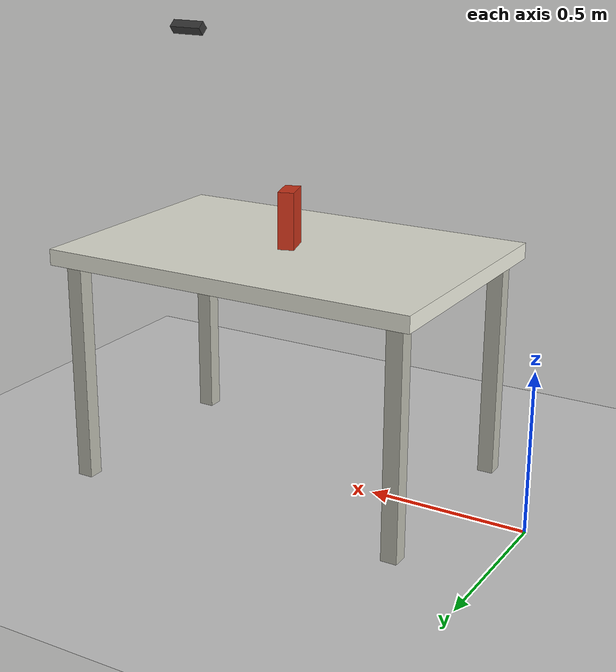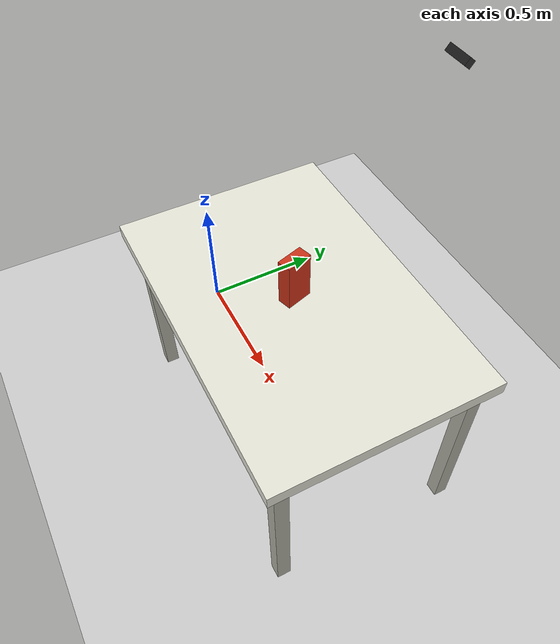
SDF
<?xml version="1.0" ?>
<sdf version="1.9">
  <world name="table_scene">

    <!--
      Physics settings.
      We use a 1ms timestep which gives stable simulation for rigid body contact.
      Real time factor 1.0 means simulation runs at the same speed as wall clock time.
    -->
    <physics name="default_physics" type="ode">
      <max_step_size>0.001</max_step_size>
      <real_time_factor>1.0</real_time_factor>
    </physics>

    <scene>
      <ambient>0.4 0.4 0.4 1</ambient>
      <background>0.7 0.7 0.7 1</background>
      <shadows>true</shadows>
    </scene>

    <!-- Plugins that Gazebo Harmonic needs to simulate sensors and physics -->
    <plugin filename="gz-sim-physics-system"
            name="gz::sim::systems::Physics"/>
    <plugin filename="gz-sim-sensors-system"
            name="gz::sim::systems::Sensors">
      <render_engine>ogre2</render_engine>
    </plugin>
    <plugin filename="gz-sim-contact-system"
            name="gz::sim::systems::Contact"/>
    <plugin filename="gz-sim-scene-broadcaster-system"
            name="gz::sim::systems::SceneBroadcaster"/>
    <plugin filename="gz-sim-user-commands-system"
            name="gz::sim::systems::UserCommands"/>

    <!-- Lighting: a directional sun light so the camera gets realistic color images -->
    <light type="directional" name="sun">
      <cast_shadows>true</cast_shadows>
      <pose>0 0 10 0 0 0</pose>
      <diffuse>0.8 0.8 0.8 1</diffuse>
      <specular>0.2 0.2 0.2 1</specular>
      <direction>-0.5 0.1 -0.9</direction>
    </light>

    <!-- Ground plane so objects don't fall forever -->
    <model name="ground_plane">
      <static>true</static>
      <link name="link">
        <collision name="collision">
          <geometry><plane><normal>0 0 1</normal></plane></geometry>
        </collision>
        <visual name="visual">
          <geometry><plane><normal>0 0 1</normal><size>100 100</size></plane></geometry>
          <material>
            <ambient>0.8 0.8 0.8 1</ambient>
            <diffuse>0.8 0.8 0.8 1</diffuse>
          </material>
        </visual>
      </link>
    </model>

    <model name="table">
      <static>true</static>
      <pose>0.8 0 0 0 0 0</pose>
      <link name="link">
        <!-- Tabletop slab: 5cm thick, top surface still at z=0.75 -->
        <collision name="top_collision">
          <pose>0 0 0.725 0 0 0</pose>
          <geometry><box><size>1.2 0.8 0.05</size></box></geometry>
        </collision>
        <visual name="top_visual">
          <pose>0 0 0.725 0 0 0</pose>
          <geometry><box><size>1.2 0.8 0.05</size></box></geometry>
          <material>
            <ambient>0.9 0.9 0.85 1</ambient>
            <diffuse>0.9 0.9 0.85 1</diffuse>
          </material>
        </visual>

        <!-- Four legs, 5cm square, from floor to underside of slab (z=0.70) -->
        <collision name="leg_fl_collision">
          <pose>0.54 0.34 0.35 0 0 0</pose>
          <geometry><box><size>0.05 0.05 0.70</size></box></geometry>
        </collision>
        <visual name="leg_fl_visual">
          <pose>0.54 0.34 0.35 0 0 0</pose>
          <geometry><box><size>0.05 0.05 0.70</size></box></geometry>
          <material><ambient>0.7 0.7 0.65 1</ambient><diffuse>0.7 0.7 0.65 1</diffuse></material>
        </visual>

        <collision name="leg_fr_collision">
          <pose>0.54 -0.34 0.35 0 0 0</pose>
          <geometry><box><size>0.05 0.05 0.70</size></box></geometry>
        </collision>
        <visual name="leg_fr_visual">
          <pose>0.54 -0.34 0.35 0 0 0</pose>
          <geometry><box><size>0.05 0.05 0.70</size></box></geometry>
          <material><ambient>0.7 0.7 0.65 1</ambient><diffuse>0.7 0.7 0.65 1</diffuse></material>
        </visual>

        <collision name="leg_bl_collision">
          <pose>-0.54 0.34 0.35 0 0 0</pose>
          <geometry><box><size>0.05 0.05 0.70</size></box></geometry>
        </collision>
        <visual name="leg_bl_visual">
          <pose>-0.54 0.34 0.35 0 0 0</pose>
          <geometry><box><size>0.05 0.05 0.70</size></box></geometry>
          <material><ambient>0.7 0.7 0.65 1</ambient><diffuse>0.7 0.7 0.65 1</diffuse></material>
        </visual>

        <collision name="leg_br_collision">
          <pose>-0.54 -0.34 0.35 0 0 0</pose>
          <geometry><box><size>0.05 0.05 0.70</size></box></geometry>
        </collision>
        <visual name="leg_br_visual">
          <pose>-0.54 -0.34 0.35 0 0 0</pose>
          <geometry><box><size>0.05 0.05 0.70</size></box></geometry>
          <material><ambient>0.7 0.7 0.65 1</ambient><diffuse>0.7 0.7 0.65 1</diffuse></material>
        </visual>
      </link>
    </model>

    <!--
      Target object: sugar box (YCB object 004).
      Sits on the table top at z=0.75m, center at z=0.794m.
      Given a distinct red color so SAM2 can segment it easily.
    -->
    <model name="sugar_box">
      <pose>0.8 0.0 0.838 0 0 0.3</pose>
      <link name="link">
        <inertial>
          <mass>0.514</mass>
          <inertia>
            <ixx>0.001707</ixx><ixy>0</ixy><ixz>0</ixz>
            <iyy>0.001432</iyy><iyz>0</iyz>
            <izz>0.0004847</izz>
          </inertia>
        </inertial>
        <collision name="collision">
          <geometry>
            <box><size>0.0495 0.0942 0.176</size></box>
          </geometry>
          <surface>
            <friction><ode><mu>3.0</mu><mu2>3.0</mu2></ode></friction>
          </surface>
        </collision>
        <visual name="visual">
          <geometry>
            <box><size>0.0495 0.0942 0.176</size></box>
          </geometry>
          <material>
            <ambient>0.8 0.2 0.1 1</ambient>
            <diffuse>0.8 0.2 0.1 1</diffuse>
          </material>
        </visual>
        <sensor name="box_contact" type="contact">
          <always_on>1</always_on>
          <update_rate>100</update_rate>
          <contact><collision>collision</collision></contact>
        </sensor>
      </link>
    </model>

    <model name="realsense_d435i">
      <static>true</static>
      <pose>0.8 0.5 1.45 0 0.8858 -1.5708</pose>
      <link name="link">

        <visual name="visual">
          <geometry>
            <box><size>0.025 0.09 0.025</size></box>
          </geometry>
          <material>
            <ambient>0.2 0.2 0.2 1</ambient>
            <diffuse>0.2 0.2 0.2 1</diffuse>
          </material>
        </visual>

        <!-- RGB sensor -->
        <sensor name="color_camera" type="camera">
          <pose>0 0 0 0 0 0</pose>
          <always_on>true</always_on>
          <update_rate>30</update_rate>
          <camera>
            <horizontal_fov>1.211</horizontal_fov>
            <image>
              <width>640</width>
              <height>480</height>
              <format>R8G8B8</format>
            </image>
            <clip><near>0.1</near><far>10.0</far></clip>
          </camera>
          <topic>camera/color/image_raw</topic>
        </sensor>

        <!-- Depth sensor -->
        <sensor name="depth_camera" type="depth_camera">
          <pose>0 0 0 0 0 0</pose>
          <always_on>true</always_on>
          <update_rate>30</update_rate>
          <camera>
            <horizontal_fov>1.211</horizontal_fov>
            <image>
              <width>640</width>
              <height>480</height>
              <format>R_FLOAT32</format>
            </image>
            <clip><near>0.1</near><far>10.0</far></clip>
          </camera>
          <topic>camera/depth/image_raw</topic>
        </sensor>

      </link>
    </model>

  </world>
</sdf>
